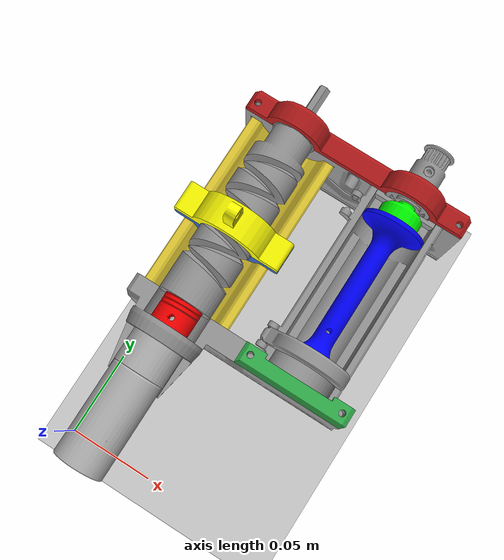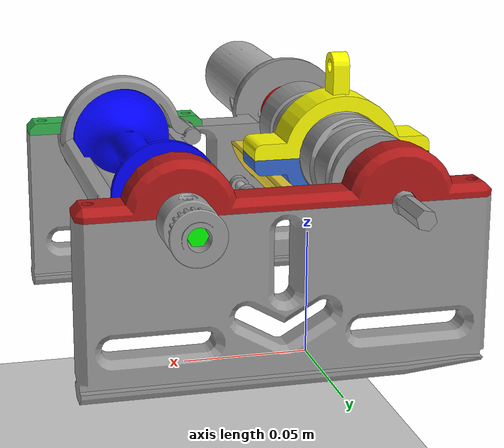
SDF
<sdf version='1.10'>
  <world name='fred_world'>
    <physics name='1ms' type='ignored'>
      <max_step_size>0.001</max_step_size>
      <real_time_factor>1</real_time_factor>
      <real_time_update_rate>1000</real_time_update_rate>
    </physics>
    <plugin name='gz::sim::systems::Physics' filename='gz-sim-physics-system'/>
    <plugin name='gz::sim::systems::UserCommands' filename='gz-sim-user-commands-system'/>
    <plugin name='gz::sim::systems::SceneBroadcaster' filename='gz-sim-scene-broadcaster-system'/>
    <plugin name='gz::sim::systems::Contact' filename='gz-sim-contact-system'/>
    <gravity>0 0 -9.8000000000000007</gravity>
    <magnetic_field>5.5644999999999998e-06 2.2875799999999999e-05 -4.2388400000000002e-05</magnetic_field>
    <atmosphere type='adiabatic'/>
    <scene>
      <ambient>0.400000006 0.400000006 0.400000006 1</ambient>
      <background>0.699999988 0.699999988 0.699999988 1</background>
      <shadows>true</shadows>
    </scene>
    <model name='ground_plane'>
      <static>false</static>
      <link name='link'>
        <collision name='collision'>
          <geometry>
            <plane>
              <normal>0 0 1</normal>
              <size>100 100</size>
            </plane>
          </geometry>
          <surface>
            <friction>
              <ode/>
            </friction>
            <bounce/>
            <contact/>
          </surface>
        </collision>
        <visual name='visual'>
          <geometry>
            <plane>
              <normal>0 0 1</normal>
              <size>100 100</size>
            </plane>
          </geometry>
          <material>
            <ambient>0.800000012 0.800000012 0.800000012 1</ambient>
            <diffuse>0.800000012 0.800000012 0.800000012 1</diffuse>
            <specular>0.800000012 0.800000012 0.800000012 1</specular>
          </material>
        </visual>
        <pose>0 0 0 0 0 0</pose>
        <inertial>
          <pose>0 0 0 0 0 0</pose>
          <mass>1</mass>
          <inertia>
            <ixx>1</ixx>
            <ixy>0</ixy>
            <ixz>0</ixz>
            <iyy>1</iyy>
            <iyz>0</iyz>
            <izz>1</izz>
          </inertia>
        </inertial>
        <enable_wind>false</enable_wind>
      </link>
      <pose>0 0 0 0 0 0</pose>
      <self_collide>false</self_collide>
    </model>
    <include>
      <uri>file:///home/fonsivillarreal/DT/src/fred_description/sdf/fred_full.sdf</uri>
      <name>fred_full</name>
      <pose>0 0 0 0 0 0</pose>
    </include>
    <light name='sun' type='directional'>
      <pose>0 0 10 0 0 0</pose>
      <cast_shadows>true</cast_shadows>
      <intensity>1</intensity>
      <direction>-0.5 0.10000000000000001 -0.90000000000000002</direction>
      <diffuse>0.800000012 0.800000012 0.800000012 1</diffuse>
      <specular>0.200000003 0.200000003 0.200000003 1</specular>
      <attenuation>
        <range>1000</range>
        <linear>0.01</linear>
        <constant>0.90000000000000002</constant>
        <quadratic>0.001</quadratic>
      </attenuation>
      <spot>
        <inner_angle>0</inner_angle>
        <outer_angle>0</outer_angle>
        <falloff>0</falloff>
      </spot>
    </light>
  </world>
</sdf>

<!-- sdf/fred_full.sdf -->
<sdf version="1.7">
  <model name="fred_full">

    <static>false</static>

    <!-- BASE -->
    <link name="base_link"/>

    <!-- ===== CORE ===== -->

    <link name="motor">
      <visual name="visual">
      <geometry>
      <mesh>
      <uri>../meshes/motor_wit.dae
      </uri>
      </mesh>
      </geometry>

      <material>
        <ambient>0.7 0.7 0.7 1</ambient>
        <diffuse>0.7 0.7 0.7 1</diffuse>
      </material>
      </visual>
    </link>

    <link name="eje">
      <visual name="visual">
      <geometry>
      <mesh>
      <uri>../meshes/eje_acopla.dae
      </uri>
      </mesh>
      </geometry>

      <material>
        <ambient>1 0 0 1</ambient>
        <diffuse>1 0 0 1</diffuse>
      </material>

      </visual>
    </link>

    <link name="carrete">
      <visual name="visual"><geometry><mesh><uri>../meshes/carrete_pr.dae</uri></mesh></geometry>

      <material>
        <ambient>0 0 1 1</ambient>
        <diffuse>0 0 1 1</diffuse>
      </material>

      </visual>
    </link>

    <link name="spool_right">
      <visual name="visual"><geometry><mesh><uri>../meshes/spool_right.dae</uri></mesh></geometry>

      <material>
        <ambient>0.5 0.5 0.5 1</ambient>
        <diffuse>0.6 0.6 0.6 1</diffuse>
        <specular>0.9 0.9 0.9 1</specular>
      </material>

      </visual>
    </link>

    <link name="spool_izq">
      <visual name="visual"><geometry><mesh><uri>../meshes/spool_izq_.dae</uri></mesh></geometry>

            <material>
        <ambient>0.5 0.5 0.5 1</ambient>
        <diffuse>0.6 0.6 0.6 1</diffuse>
        <specular>0.9 0.9 0.9 1</specular>
      </material>

      </visual>
    </link>

    <!-- ===== ESTRUCTURA ===== -->

    <link name="abajo_carr">
      <visual name="visual"><geometry><mesh><uri>../meshes/abajo_carr.dae</uri></mesh></geometry>

      <material>
        <ambient>0.5 0.5 0.5 1</ambient>
        <diffuse>0.6 0.6 0.6 1</diffuse>
        <specular>1 1 1 1</specular>
      </material>
      </visual>
    </link>

    <link name="guia_upper">
      <visual name="visual"><geometry><mesh><uri>../meshes/guia_upper.dae</uri></mesh></geometry>

      <material>
        <ambient>1 1 0 1</ambient>
        <diffuse>1 1 0 1</diffuse>
      </material>
      </visual>
    </link>

    <link name="enlace_car">
      <visual name="visual"><geometry><mesh><uri>../meshes/enlace_car.dae</uri></mesh></geometry>

      <material>
        <ambient>0 1 0 1</ambient>
        <diffuse>0 1 0 1</diffuse>
      </material>

      </visual>
    </link>

    <!-- ===== SPOOLS SECUNDARIOS ===== -->

    <link name="spool_aba">
      <visual name="visual"><geometry><mesh><uri>../meshes/spool_aba.dae</uri></mesh></geometry>

      <material>
        <ambient>0.9 0.8 0.2 1</ambient>
        <diffuse>0.9 0.8 0.2 1</diffuse>
      </material>

      </visual>
    </link>

    <link name="spool_abaj">
      <visual name="visual"><geometry><mesh><uri>../meshes/spool_abaj.dae</uri></mesh></geometry>

      <material>
        <ambient>0.2 0.4 0.8 1</ambient>
        <diffuse>0.2 0.4 0.8 1</diffuse>
      </material>

      </visual>
    </link>

    <link name="upper_spo">
      <visual name="visual"><geometry><mesh><uri>../meshes/upper_spo.dae</uri></mesh></geometry>

      <material>
        <ambient>0.2 0.7 0.3 1</ambient>
        <diffuse>0.2 0.7 0.3 1</diffuse>
      </material>

      </visual>
    </link>

    <link name="upper_spoo">
      <visual name="visual"><geometry><mesh><uri>../meshes/upper_spoo.dae</uri></mesh></geometry>

      <material>
        <ambient>0.7 0.1 0.1 1</ambient>
        <diffuse>0.7 0.1 0.1 1</diffuse>
      </material>

      </visual>
    </link>

    <!-- ===== OTROS ===== -->

    <link name="tubo_prede">
      <visual name="visual"><geometry><mesh><uri>../meshes/tubo_prede.dae</uri></mesh></geometry>

      <material>
        <ambient>0.5 0.5 0.5 1</ambient>
        <diffuse>0.6 0.6 0.6 1</diffuse>
        <specular>1 1 1 1</specular>
      </material>

      </visual>
    </link>

    <link name="no_bolita">
      <visual name="visual"><geometry><mesh><uri>../meshes/no_bolita_.dae</uri></mesh></geometry>
      <material>
        <ambient>0.5 0.5 0.5 1</ambient>
        <diffuse>0.6 0.6 0.6 1</diffuse>
        <specular>1 1 1 1</specular>
      </material>

      </visual>
    </link>

    <link name="predeterm">
      <visual name="visual"><geometry><mesh><uri>../meshes/predeterm.dae</uri></mesh></geometry>
      <material>
        <ambient>0.5 0.5 0.5 1</ambient>
        <diffuse>0.6 0.6 0.6 1</diffuse>
        <specular>1 1 1 1</specular>
      </material>

      </visual>
    </link>

    <link name="bearing">
      <visual name="visual"><geometry><mesh><uri>../meshes/12.1.4.1_.dae</uri></mesh></geometry>
      <material>
        <ambient>0.5 0.5 0.5 1</ambient>
        <diffuse>0.6 0.6 0.6 1</diffuse>
        <specular>1 1 1 1</specular>
      </material>
      </visual>
    </link>

    <link name="pieza_extra">
      <visual name="visual"><geometry><mesh><uri>../meshes/3422-0250.dae</uri></mesh></geometry>
      <material>
        <ambient>0.5 0.5 0.5 1</ambient>
        <diffuse>0.6 0.6 0.6 1</diffuse>
        <specular>1 1 1 1</specular>
      </material>
      </visual>
    </link>

    <!-- ===== JOINTS (todo fijo por ahora) ===== -->

    <joint name="base_to_motor" type="fixed">
      <parent>base_link</parent>
      <child>motor</child>
    </joint>

    <joint name="motor_to_eje" type="fixed">
      <parent>motor</parent>
      <child>eje</child>
    </joint>

    <joint name="eje_to_carrete" type="fixed">
      <parent>eje</parent>
      <child>carrete</child>
    </joint>

    <joint name="carrete_to_spool_right" type="fixed">
      <parent>carrete</parent>
      <child>spool_right</child>
    </joint>

    <joint name="carrete_to_spool_izq" type="fixed">
      <parent>carrete</parent>
      <child>spool_izq</child>
    </joint>

    <!-- TODO LO DEMÁS PEGADO AL BASE -->

    <joint name="fix_abajo" type="fixed">
      <parent>base_link</parent>
      <child>abajo_carr</child>
    </joint>

    <joint name="fix_guia" type="fixed">
      <parent>base_link</parent>
      <child>guia_upper</child>
    </joint>

    <joint name="fix_enlace" type="fixed">
      <parent>base_link</parent>
      <child>enlace_car</child>
    </joint>

    <joint name="fix_spool_aba" type="fixed">
      <parent>base_link</parent>
      <child>spool_aba</child>
    </joint>

    <joint name="fix_spool_abaj" type="fixed">
      <parent>base_link</parent>
      <child>spool_abaj</child>
    </joint>

    <joint name="fix_upper1" type="fixed">
      <parent>base_link</parent>
      <child>upper_spo</child>
    </joint>

    <joint name="fix_upper2" type="fixed">
      <parent>base_link</parent>
      <child>upper_spoo</child>
    </joint>

    <joint name="fix_tubo" type="revolute">
      <parent>motor</parent>
      <child>tubo_prede</child>
      <axis>
        <xyz>0 0 1</xyz> <limit>
        <lower>-3.1415</lower> <upper>3.1415</upper>  <effort>10</effort>    <velocity>1.0</velocity> </limit>
      </axis>
    </joint>

    <joint name="fix_bolita" type="fixed">
      <parent>base_link</parent>
      <child>no_bolita</child>
    </joint>

    <joint name="fix_predeterm" type="fixed">
      <parent>base_link</parent>
      <child>predeterm</child>
    </joint>

    <joint name="fix_bearing" type="fixed">
      <parent>base_link</parent>
      <child>bearing</child>
    </joint>

    <joint name="fix_extra" type="fixed">
      <parent>base_link</parent>
      <child>pieza_extra</child>
    </joint>

  </model>
</sdf>
